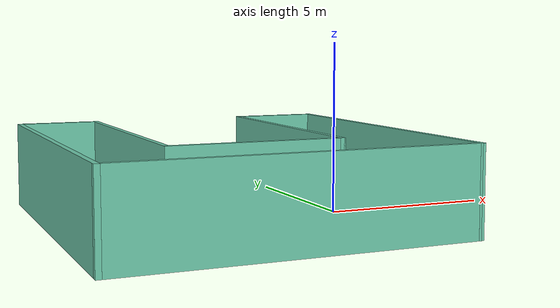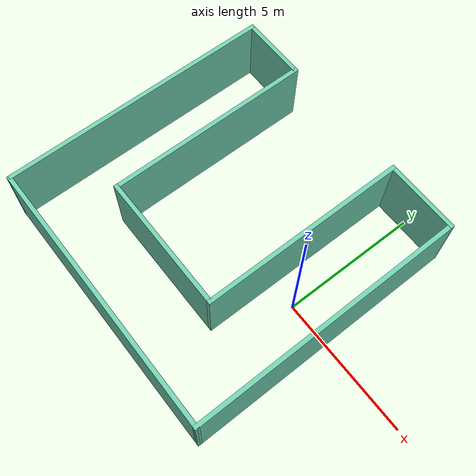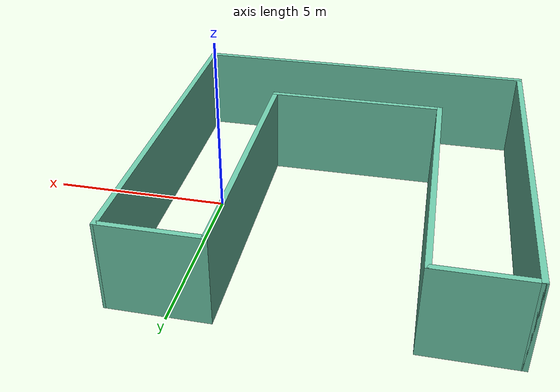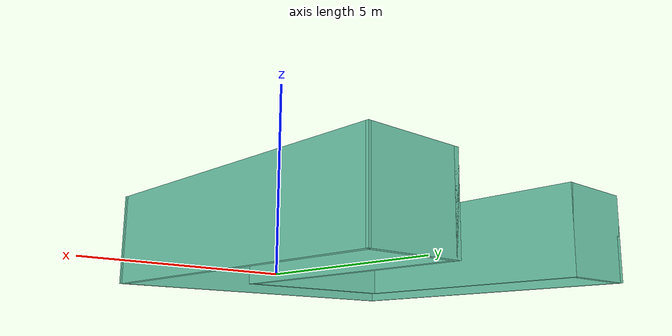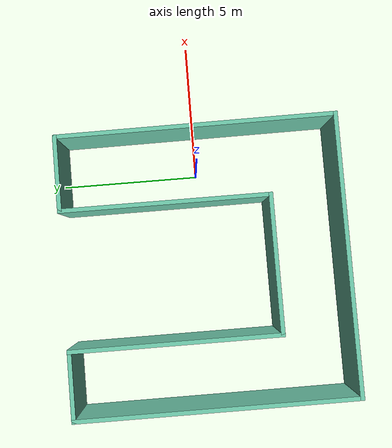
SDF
<?xml version='1.0'?>
<sdf version='1.7'>
  <model name='mybuilding'>
    <pose>-3.34481 -0.075 0 0 -0 0</pose>
    <link name='Wall_10'>
      <collision name='Wall_10_Collision'>
        <geometry>
          <box>
            <size>10 0.15 2.5</size>
          </box>
        </geometry>
        <pose>0 0 1.25 0 -0 0</pose>
      </collision>
      <visual name='Wall_10_Visual'>
        <pose>0 0 1.25 0 -0 0</pose>
        <geometry>
          <box>
            <size>10 0.15 2.5</size>
          </box>
        </geometry>
        <material>
          <script>
            <uri>file://media/materials/scripts/gazebo.material</uri>
            <name>Gazebo/Grey</name>
          </script>
          <ambient>0.435294 0.796078 0.67451 1</ambient>
        </material>
        <meta>
          <layer>0</layer>
        </meta>
      </visual>
      <pose>-4.92519 -0 0 0 -0 1.5708</pose>
    </link>
    <link name='Wall_11'>
      <collision name='Wall_11_Collision'>
        <geometry>
          <box>
            <size>2.5 0.15 2.5</size>
          </box>
        </geometry>
        <pose>0 0 1.25 0 -0 0</pose>
      </collision>
      <visual name='Wall_11_Visual'>
        <pose>0 0 1.25 0 -0 0</pose>
        <geometry>
          <box>
            <size>2.5 0.15 2.5</size>
          </box>
        </geometry>
        <material>
          <script>
            <uri>file://media/materials/scripts/gazebo.material</uri>
            <name>Gazebo/Grey</name>
          </script>
          <ambient>0.435294 0.796078 0.67451 1</ambient>
        </material>
        <meta>
          <layer>0</layer>
        </meta>
      </visual>
      <pose>-3.75019 4.925 0 0 -0 0</pose>
    </link>
    <link name='Wall_12'>
      <collision name='Wall_12_Collision'>
        <geometry>
          <box>
            <size>7.5 0.15 2.5</size>
          </box>
        </geometry>
        <pose>0 0 1.25 0 -0 0</pose>
      </collision>
      <visual name='Wall_12_Visual'>
        <pose>0 0 1.25 0 -0 0</pose>
        <geometry>
          <box>
            <size>7.5 0.15 2.5</size>
          </box>
        </geometry>
        <material>
          <script>
            <uri>file://media/materials/scripts/gazebo.material</uri>
            <name>Gazebo/Grey</name>
          </script>
          <ambient>0.435294 0.796078 0.67451 1</ambient>
        </material>
        <meta>
          <layer>0</layer>
        </meta>
      </visual>
      <pose>-2.57519 1.25 0 0 -0 -1.5708</pose>
    </link>
    <link name='Wall_13'>
      <collision name='Wall_13_Collision'>
        <geometry>
          <box>
            <size>5 0.15 2.5</size>
          </box>
        </geometry>
        <pose>0 0 1.25 0 -0 0</pose>
      </collision>
      <visual name='Wall_13_Visual'>
        <pose>0 0 1.25 0 -0 0</pose>
        <geometry>
          <box>
            <size>5 0.15 2.5</size>
          </box>
        </geometry>
        <material>
          <script>
            <uri>file://media/materials/scripts/gazebo.material</uri>
            <name>Gazebo/Grey</name>
          </script>
          <ambient>0.435294 0.796078 0.67451 1</ambient>
        </material>
        <meta>
          <layer>0</layer>
        </meta>
      </visual>
      <pose>-0.150189 -2.425 0 0 -0 0</pose>
    </link>
    <link name='Wall_17'>
      <collision name='Wall_17_Collision'>
        <geometry>
          <box>
            <size>7.5 0.15 2.5</size>
          </box>
        </geometry>
        <pose>0 0 1.25 0 -0 0</pose>
      </collision>
      <visual name='Wall_17_Visual'>
        <pose>0 0 1.25 0 -0 0</pose>
        <geometry>
          <box>
            <size>7.5 0.15 2.5</size>
          </box>
        </geometry>
        <material>
          <script>
            <uri>file://media/materials/scripts/gazebo.material</uri>
            <name>Gazebo/Grey</name>
          </script>
          <ambient>0.435294 0.796078 0.67451 1</ambient>
        </material>
        <meta>
          <layer>0</layer>
        </meta>
      </visual>
      <pose>2.27481 1.25 0 0 -0 1.5708</pose>
    </link>
    <link name='Wall_20'>
      <collision name='Wall_20_Collision'>
        <geometry>
          <box>
            <size>2.75 0.15 2.5</size>
          </box>
        </geometry>
        <pose>0 0 1.25 0 -0 0</pose>
      </collision>
      <visual name='Wall_20_Visual'>
        <pose>0 0 1.25 0 -0 0</pose>
        <geometry>
          <box>
            <size>2.75 0.15 2.5</size>
          </box>
        </geometry>
        <material>
          <script>
            <uri>file://media/materials/scripts/gazebo.material</uri>
            <name>Gazebo/Grey</name>
          </script>
          <ambient>0.435294 0.796078 0.67451 1</ambient>
        </material>
        <meta>
          <layer>0</layer>
        </meta>
      </visual>
      <pose>3.57481 4.925 0 0 -0 0</pose>
    </link>
    <link name='Wall_21'>
      <collision name='Wall_21_Collision'>
        <geometry>
          <box>
            <size>10.0001 0.15 2.5</size>
          </box>
        </geometry>
        <pose>0 0 1.25 0 -0 0</pose>
      </collision>
      <visual name='Wall_21_Visual'>
        <pose>0 0 1.25 0 -0 0</pose>
        <geometry>
          <box>
            <size>10.0001 0.15 2.5</size>
          </box>
        </geometry>
        <material>
          <script>
            <uri>file://media/materials/scripts/gazebo.material</uri>
            <name>Gazebo/Grey</name>
          </script>
          <ambient>0.435294 0.796078 0.67451 1</ambient>
        </material>
        <meta>
          <layer>0</layer>
        </meta>
      </visual>
      <pose>4.89981 -0 0 0 -0 -1.56572</pose>
    </link>
    <link name='Wall_7'>
      <collision name='Wall_7_Collision'>
        <geometry>
          <box>
            <size>10 0.15 2.5</size>
          </box>
        </geometry>
        <pose>0 0 1.25 0 -0 0</pose>
      </collision>
      <visual name='Wall_7_Visual'>
        <pose>0 0 1.25 0 -0 0</pose>
        <geometry>
          <box>
            <size>10 0.15 2.5</size>
          </box>
        </geometry>
        <material>
          <script>
            <uri>file://media/materials/scripts/gazebo.material</uri>
            <name>Gazebo/Grey</name>
          </script>
          <ambient>0.435294 0.796078 0.67451 1</ambient>
        </material>
        <meta>
          <layer>0</layer>
        </meta>
      </visual>
      <pose>-0.000189 -4.925 0 0 -0 3.14159</pose>
    </link>
    <static>1</static>
  </model>
</sdf>
